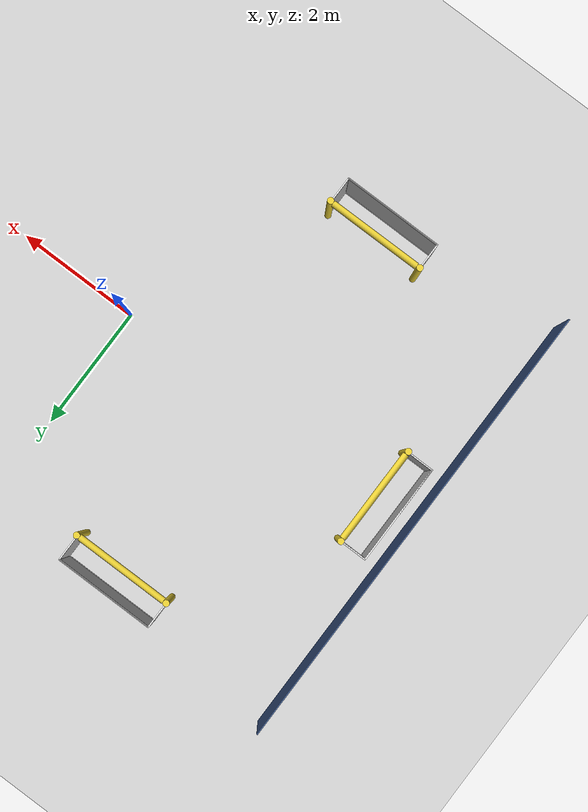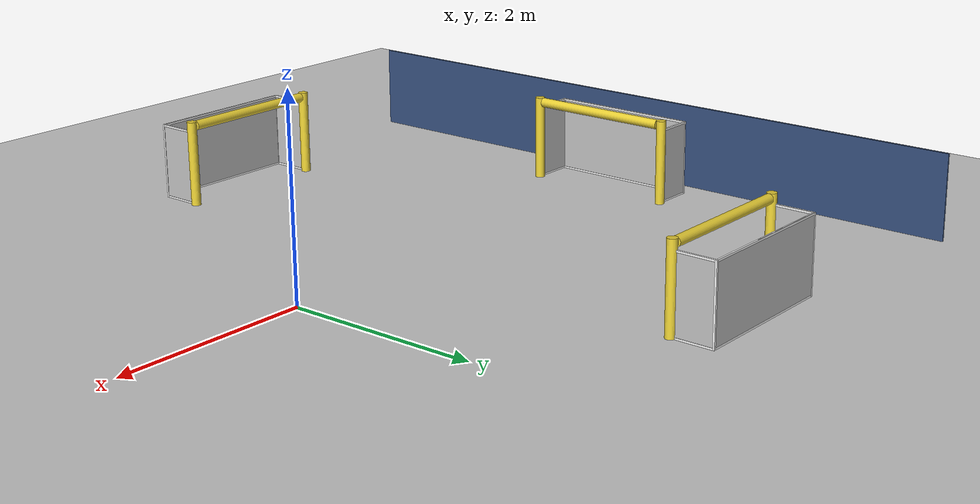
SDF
<sdf version="1.6">
 <world name="default">
  <model name="ground_plane">
   <static>1</static>
   <link name="link">
    <collision name="collision">
     <geometry><plane><normal>0 0 1</normal><size>100 100</size></plane></geometry>
     <surface><friction><ode><mu>100</mu><mu2>50</mu2></ode></friction></surface>
    </collision>
    <visual name="visual">
     <cast_shadows>0</cast_shadows>
     <geometry><plane><normal>0 0 1</normal><size>100 100</size></plane></geometry>
     <material>
      <script><uri>file://media/materials/scripts/gazebo.material</uri><name>Gazebo/Grey</name></script>
     </material>
    </visual>
   </link>
  </model>
  <model name="RoboCup 2014 SPL Goal">
   <static>1</static>
   <link name="left_post">
    <pose>0 0.8 0.45 0 -0 0</pose>
    <collision name="collision">
     <geometry><cylinder><radius>0.05</radius><length>0.9</length></cylinder></geometry>
    </collision>
    <visual name="visual">
     <geometry><cylinder><radius>0.05</radius><length>0.9</length></cylinder></geometry>
     <material>
      <script><uri>file://media/materials/scripts/gazebo.material</uri><name>Gazebo/ZincYellow</name></script>
     </material>
    </visual>
   </link>
   <link name="left_support_horiz_lower">
    <pose>0.24 0.8 0.01 0 -0 0</pose>
    <collision name="collision"><geometry><box><size>0.38 0.02 0.02</size></box></geometry></collision>
    <visual name="visual">
     <geometry><box><size>0.38 0.02 0.02</size></box></geometry>
     <material>
      <script><uri>file://media/materials/scripts/gazebo.material</uri><name>Gazebo/White</name></script>
     </material>
    </visual>
   </link>
   <link name="left_support_horiz_upper">
    <pose>0.24 0.8 0.79 0 -0 0</pose>
    <collision name="collision"><geometry><box><size>0.38 0.02 0.02</size></box></geometry></collision>
    <visual name="visual">
     <geometry><box><size>0.38 0.02 0.02</size></box></geometry>
     <material>
      <script><uri>file://media/materials/scripts/gazebo.material</uri><name>Gazebo/White</name></script>
     </material>
    </visual>
   </link>
   <link name="left_support_vertical">
    <pose>0.44 0.8 0.4 3.14159 1.57079 3.14159</pose>
    <collision name="collision"><geometry><box><size>0.8 0.02 0.02</size></box></geometry></collision>
    <visual name="visual">
     <geometry><box><size>0.8 0.02 0.02</size></box></geometry>
     <material>
      <script><uri>file://media/materials/scripts/gazebo.material</uri><name>Gazebo/White</name></script>
     </material>
    </visual>
   </link>
   <link name="right_support_horiz_lower">
    <pose>0.24 -0.8 0.01 0 -0 0</pose>
    <collision name="collision"><geometry><box><size>0.38 0.02 0.02</size></box></geometry></collision>
    <visual name="visual">
     <geometry><box><size>0.38 0.02 0.02</size></box></geometry>
     <material>
      <script><uri>file://media/materials/scripts/gazebo.material</uri><name>Gazebo/White</name></script>
     </material>
    </visual>
   </link>
   <link name="right_support_horiz_upper">
    <pose>0.24 -0.8 0.79 0 -0 0</pose>
    <collision name="collision"><geometry><box><size>0.38 0.02 0.02</size></box></geometry></collision>
    <visual name="visual">
     <geometry><box><size>0.38 0.02 0.02</size></box></geometry>
     <material>
      <script><uri>file://media/materials/scripts/gazebo.material</uri><name>Gazebo/White</name></script>
     </material>
    </visual>
   </link>
   <link name="right_support_vertical">
    <pose>0.44 -0.8 0.4 3.14159 1.57079 3.14159</pose>
    <collision name="collision"><geometry><box><size>0.8 0.02 0.02</size></box></geometry></collision>
    <visual name="visual">
     <geometry><box><size>0.8 0.02 0.02</size></box></geometry>
     <material>
      <script><uri>file://media/materials/scripts/gazebo.material</uri><name>Gazebo/White</name></script>
     </material>
    </visual>
   </link>
   <link name="center_support_horiz_lower">
    <pose>0.44 0 0.01 3.14159 1.57079 3.14159</pose>
    <collision name="collision"><geometry><box><size>0.02 1.58 0.02</size></box></geometry></collision>
    <visual name="visual">
     <geometry><box><size>0.02 1.58 0.02</size></box></geometry>
     <material>
      <script><uri>file://media/materials/scripts/gazebo.material</uri><name>Gazebo/White</name></script>
     </material>
    </visual>
   </link>
   <link name="center_support_horiz_upper">
    <pose>0.44 0 0.79 3.14159 1.57079 3.14159</pose>
    <collision name="collision"><geometry><box><size>0.02 1.58 0.02</size></box></geometry></collision>
    <visual name="visual">
     <geometry><box><size>0.02 1.58 0.02</size></box></geometry>
     <material>
      <script><uri>file://media/materials/scripts/gazebo.material</uri><name>Gazebo/White</name></script>
     </material>
    </visual>
   </link>
   <link name="right_post">
    <pose>0 -0.8 0.45 0 -0 0</pose>
    <collision name="collision">
     <geometry><cylinder><radius>0.05</radius><length>0.9</length></cylinder></geometry>
    </collision>
    <visual name="visual">
     <geometry><cylinder><radius>0.05</radius><length>0.9</length></cylinder></geometry>
     <material>
      <script><uri>file://media/materials/scripts/gazebo.material</uri><name>Gazebo/ZincYellow</name></script>
     </material>
    </visual>
   </link>
   <link name="crossbar">
    <pose>0 0 0.85 1.57 1.57 0</pose>
    <collision name="collision">
     <geometry><cylinder><radius>0.05</radius><length>1.5</length></cylinder></geometry>
    </collision>
    <visual name="visual">
     <geometry><cylinder><radius>0.05</radius><length>1.5</length></cylinder></geometry>
     <material>
      <script><uri>file://media/materials/scripts/gazebo.material</uri><name>Gazebo/ZincYellow</name></script>
     </material>
    </visual>
   </link>
   <link name="center_net">
    <pose>0.44 0 0.4 0 -0 0</pose>
    <collision name="collision"><geometry><box><size>0.01 1.6 0.8</size></box></geometry></collision>
    <visual name="visual">
     <geometry><box><size>0.01 1.6 0.8</size></box></geometry>
     <material>
      <script>
       <uri>model://robocup09_spl_field/materials/scripts/</uri>
       <uri>model://robocup09_spl_field/materials/textures/</uri>
       <name>RoboCup/Net</name>
      </script>
     </material>
    </visual>
   </link>
   <link name="left_net">
    <pose>0.24 0.8 0.4 0 -0 0</pose>
    <collision name="collision"><geometry><box><size>0.38 0.01 0.76</size></box></geometry></collision>
    <visual name="visual">
     <geometry><box><size>0.38 0.01 0.76</size></box></geometry>
     <material>
      <script>
       <uri>model://robocup09_spl_field/materials/scripts/</uri>
       <uri>model://robocup09_spl_field/materials/textures/</uri>
       <name>RoboCup/Net</name>
      </script>
     </material>
    </visual>
   </link>
   <link name="right_net">
    <pose>0.24 -0.8 0.4 0 -0 0</pose>
    <collision name="collision"><geometry><box><size>0.38 0.01 0.76</size></box></geometry></collision>
    <visual name="visual">
     <geometry><box><size>0.38 0.01 0.76</size></box></geometry>
     <material>
      <script>
       <uri>model://robocup09_spl_field/materials/scripts/</uri>
       <uri>model://robocup09_spl_field/materials/textures/</uri>
       <name>RoboCup/Net</name>
      </script>
     </material>
    </visual>
   </link>
   <pose>-4.5 -0 -0 0 -0 3.14159</pose>
  </model>
  <model name="RoboCup 2014 SPL Goal_0">
   <static>1</static>
   <link name="left_post">
    <pose>0 0.8 0.45 0 -0 0</pose>
    <collision name="collision">
     <geometry><cylinder><radius>0.05</radius><length>0.9</length></cylinder></geometry>
    </collision>
    <visual name="visual">
     <geometry><cylinder><radius>0.05</radius><length>0.9</length></cylinder></geometry>
     <material>
      <script><uri>file://media/materials/scripts/gazebo.material</uri><name>Gazebo/ZincYellow</name></script>
     </material>
    </visual>
   </link>
   <link name="left_support_horiz_lower">
    <pose>0.24 0.8 0.01 0 -0 0</pose>
    <collision name="collision"><geometry><box><size>0.38 0.02 0.02</size></box></geometry></collision>
    <visual name="visual">
     <geometry><box><size>0.38 0.02 0.02</size></box></geometry>
     <material>
      <script><uri>file://media/materials/scripts/gazebo.material</uri><name>Gazebo/White</name></script>
     </material>
    </visual>
   </link>
   <link name="left_support_horiz_upper">
    <pose>0.24 0.8 0.79 0 -0 0</pose>
    <collision name="collision"><geometry><box><size>0.38 0.02 0.02</size></box></geometry></collision>
    <visual name="visual">
     <geometry><box><size>0.38 0.02 0.02</size></box></geometry>
     <material>
      <script><uri>file://media/materials/scripts/gazebo.material</uri><name>Gazebo/White</name></script>
     </material>
    </visual>
   </link>
   <link name="left_support_vertical">
    <pose>0.44 0.8 0.4 3.14159 1.57079 3.14159</pose>
    <collision name="collision"><geometry><box><size>0.8 0.02 0.02</size></box></geometry></collision>
    <visual name="visual">
     <geometry><box><size>0.8 0.02 0.02</size></box></geometry>
     <material>
      <script><uri>file://media/materials/scripts/gazebo.material</uri><name>Gazebo/White</name></script>
     </material>
    </visual>
   </link>
   <link name="right_support_horiz_lower">
    <pose>0.24 -0.8 0.01 0 -0 0</pose>
    <collision name="collision"><geometry><box><size>0.38 0.02 0.02</size></box></geometry></collision>
    <visual name="visual">
     <geometry><box><size>0.38 0.02 0.02</size></box></geometry>
     <material>
      <script><uri>file://media/materials/scripts/gazebo.material</uri><name>Gazebo/White</name></script>
     </material>
    </visual>
   </link>
   <link name="right_support_horiz_upper">
    <pose>0.24 -0.8 0.79 0 -0 0</pose>
    <collision name="collision"><geometry><box><size>0.38 0.02 0.02</size></box></geometry></collision>
    <visual name="visual">
     <geometry><box><size>0.38 0.02 0.02</size></box></geometry>
     <material>
      <script><uri>file://media/materials/scripts/gazebo.material</uri><name>Gazebo/White</name></script>
     </material>
    </visual>
   </link>
   <link name="right_support_vertical">
    <pose>0.44 -0.8 0.4 3.14159 1.57079 3.14159</pose>
    <collision name="collision"><geometry><box><size>0.8 0.02 0.02</size></box></geometry></collision>
    <visual name="visual">
     <geometry><box><size>0.8 0.02 0.02</size></box></geometry>
     <material>
      <script><uri>file://media/materials/scripts/gazebo.material</uri><name>Gazebo/White</name></script>
     </material>
    </visual>
   </link>
   <link name="center_support_horiz_lower">
    <pose>0.44 0 0.01 3.14159 1.57079 3.14159</pose>
    <collision name="collision"><geometry><box><size>0.02 1.58 0.02</size></box></geometry></collision>
    <visual name="visual">
     <geometry><box><size>0.02 1.58 0.02</size></box></geometry>
     <material>
      <script><uri>file://media/materials/scripts/gazebo.material</uri><name>Gazebo/White</name></script>
     </material>
    </visual>
   </link>
   <link name="center_support_horiz_upper">
    <pose>0.44 0 0.79 3.14159 1.57079 3.14159</pose>
    <collision name="collision"><geometry><box><size>0.02 1.58 0.02</size></box></geometry></collision>
    <visual name="visual">
     <geometry><box><size>0.02 1.58 0.02</size></box></geometry>
     <material>
      <script><uri>file://media/materials/scripts/gazebo.material</uri><name>Gazebo/White</name></script>
     </material>
    </visual>
   </link>
   <link name="right_post">
    <pose>0 -0.8 0.45 0 -0 0</pose>
    <collision name="collision">
     <geometry><cylinder><radius>0.05</radius><length>0.9</length></cylinder></geometry>
    </collision>
    <visual name="visual">
     <geometry><cylinder><radius>0.05</radius><length>0.9</length></cylinder></geometry>
     <material>
      <script><uri>file://media/materials/scripts/gazebo.material</uri><name>Gazebo/ZincYellow</name></script>
     </material>
    </visual>
   </link>
   <link name="crossbar">
    <pose>0 0 0.85 1.57 1.57 0</pose>
    <collision name="collision">
     <geometry><cylinder><radius>0.05</radius><length>1.5</length></cylinder></geometry>
    </collision>
    <visual name="visual">
     <geometry><cylinder><radius>0.05</radius><length>1.5</length></cylinder></geometry>
     <material>
      <script><uri>file://media/materials/scripts/gazebo.material</uri><name>Gazebo/ZincYellow</name></script>
     </material>
    </visual>
   </link>
   <link name="center_net">
    <pose>0.44 0 0.4 0 -0 0</pose>
    <collision name="collision"><geometry><box><size>0.01 1.6 0.8</size></box></geometry></collision>
    <visual name="visual">
     <geometry><box><size>0.01 1.6 0.8</size></box></geometry>
     <material>
      <script>
       <uri>model://robocup09_spl_field/materials/scripts/</uri>
       <uri>model://robocup09_spl_field/materials/textures/</uri>
       <name>RoboCup/Net</name>
      </script>
     </material>
    </visual>
   </link>
   <link name="left_net">
    <pose>0.24 0.8 0.4 0 -0 0</pose>
    <collision name="collision"><geometry><box><size>0.38 0.01 0.76</size></box></geometry></collision>
    <visual name="visual">
     <geometry><box><size>0.38 0.01 0.76</size></box></geometry>
     <material>
      <script>
       <uri>model://robocup09_spl_field/materials/scripts/</uri>
       <uri>model://robocup09_spl_field/materials/textures/</uri>
       <name>RoboCup/Net</name>
      </script>
     </material>
    </visual>
   </link>
   <link name="right_net">
    <pose>0.24 -0.8 0.4 0 -0 0</pose>
    <collision name="collision"><geometry><box><size>0.38 0.01 0.76</size></box></geometry></collision>
    <visual name="visual">
     <geometry><box><size>0.38 0.01 0.76</size></box></geometry>
     <material>
      <script>
       <uri>model://robocup09_spl_field/materials/scripts/</uri>
       <uri>model://robocup09_spl_field/materials/textures/</uri>
       <name>RoboCup/Net</name>
      </script>
     </material>
    </visual>
   </link>
   <pose>-2.25 -3 0 0 0 -1.5708</pose>
  </model>
  <model name="RoboCup 2014 SPL Goal_clone">
   <static>1</static>
   <link name="left_post">
    <pose>0 0.8 0.45 0 -0 0</pose>
    <collision name="collision">
     <geometry><cylinder><radius>0.05</radius><length>0.9</length></cylinder></geometry>
    </collision>
    <visual name="visual">
     <geometry><cylinder><radius>0.05</radius><length>0.9</length></cylinder></geometry>
     <material>
      <script><uri>file://media/materials/scripts/gazebo.material</uri><name>Gazebo/ZincYellow</name></script>
     </material>
    </visual>
   </link>
   <link name="left_support_horiz_lower">
    <pose>0.24 0.8 0.01 0 -0 0</pose>
    <collision name="collision"><geometry><box><size>0.38 0.02 0.02</size></box></geometry></collision>
    <visual name="visual">
     <geometry><box><size>0.38 0.02 0.02</size></box></geometry>
     <material>
      <script><uri>file://media/materials/scripts/gazebo.material</uri><name>Gazebo/White</name></script>
     </material>
    </visual>
   </link>
   <link name="left_support_horiz_upper">
    <pose>0.24 0.8 0.79 0 -0 0</pose>
    <collision name="collision"><geometry><box><size>0.38 0.02 0.02</size></box></geometry></collision>
    <visual name="visual">
     <geometry><box><size>0.38 0.02 0.02</size></box></geometry>
     <material>
      <script><uri>file://media/materials/scripts/gazebo.material</uri><name>Gazebo/White</name></script>
     </material>
    </visual>
   </link>
   <link name="left_support_vertical">
    <pose>0.44 0.8 0.4 3.14159 1.57079 3.14159</pose>
    <collision name="collision"><geometry><box><size>0.8 0.02 0.02</size></box></geometry></collision>
    <visual name="visual">
     <geometry><box><size>0.8 0.02 0.02</size></box></geometry>
     <material>
      <script><uri>file://media/materials/scripts/gazebo.material</uri><name>Gazebo/White</name></script>
     </material>
    </visual>
   </link>
   <link name="right_support_horiz_lower">
    <pose>0.24 -0.8 0.01 0 -0 0</pose>
    <collision name="collision"><geometry><box><size>0.38 0.02 0.02</size></box></geometry></collision>
    <visual name="visual">
     <geometry><box><size>0.38 0.02 0.02</size></box></geometry>
     <material>
      <script><uri>file://media/materials/scripts/gazebo.material</uri><name>Gazebo/White</name></script>
     </material>
    </visual>
   </link>
   <link name="right_support_horiz_upper">
    <pose>0.24 -0.8 0.79 0 -0 0</pose>
    <collision name="collision"><geometry><box><size>0.38 0.02 0.02</size></box></geometry></collision>
    <visual name="visual">
     <geometry><box><size>0.38 0.02 0.02</size></box></geometry>
     <material>
      <script><uri>file://media/materials/scripts/gazebo.material</uri><name>Gazebo/White</name></script>
     </material>
    </visual>
   </link>
   <link name="right_support_vertical">
    <pose>0.44 -0.8 0.4 3.14159 1.57079 3.14159</pose>
    <collision name="collision"><geometry><box><size>0.8 0.02 0.02</size></box></geometry></collision>
    <visual name="visual">
     <geometry><box><size>0.8 0.02 0.02</size></box></geometry>
     <material>
      <script><uri>file://media/materials/scripts/gazebo.material</uri><name>Gazebo/White</name></script>
     </material>
    </visual>
   </link>
   <link name="center_support_horiz_lower">
    <pose>0.44 0 0.01 3.14159 1.57079 3.14159</pose>
    <collision name="collision"><geometry><box><size>0.02 1.58 0.02</size></box></geometry></collision>
    <visual name="visual">
     <geometry><box><size>0.02 1.58 0.02</size></box></geometry>
     <material>
      <script><uri>file://media/materials/scripts/gazebo.material</uri><name>Gazebo/White</name></script>
     </material>
    </visual>
   </link>
   <link name="center_support_horiz_upper">
    <pose>0.44 0 0.79 3.14159 1.57079 3.14159</pose>
    <collision name="collision"><geometry><box><size>0.02 1.58 0.02</size></box></geometry></collision>
    <visual name="visual">
     <geometry><box><size>0.02 1.58 0.02</size></box></geometry>
     <material>
      <script><uri>file://media/materials/scripts/gazebo.material</uri><name>Gazebo/White</name></script>
     </material>
    </visual>
   </link>
   <link name="right_post">
    <pose>0 -0.8 0.45 0 -0 0</pose>
    <collision name="collision">
     <geometry><cylinder><radius>0.05</radius><length>0.9</length></cylinder></geometry>
    </collision>
    <visual name="visual">
     <geometry><cylinder><radius>0.05</radius><length>0.9</length></cylinder></geometry>
     <material>
      <script><uri>file://media/materials/scripts/gazebo.material</uri><name>Gazebo/ZincYellow</name></script>
     </material>
    </visual>
   </link>
   <link name="crossbar">
    <pose>0 0 0.85 1.57 1.57 0</pose>
    <collision name="collision">
     <geometry><cylinder><radius>0.05</radius><length>1.5</length></cylinder></geometry>
    </collision>
    <visual name="visual">
     <geometry><cylinder><radius>0.05</radius><length>1.5</length></cylinder></geometry>
     <material>
      <script><uri>file://media/materials/scripts/gazebo.material</uri><name>Gazebo/ZincYellow</name></script>
     </material>
    </visual>
   </link>
   <link name="center_net">
    <pose>0.44 0 0.4 0 -0 0</pose>
    <collision name="collision"><geometry><box><size>0.01 1.6 0.8</size></box></geometry></collision>
    <visual name="visual">
     <geometry><box><size>0.01 1.6 0.8</size></box></geometry>
     <material>
      <script>
       <uri>model://robocup09_spl_field/materials/scripts/</uri>
       <uri>model://robocup09_spl_field/materials/textures/</uri>
       <name>RoboCup/Net</name>
      </script>
     </material>
    </visual>
   </link>
   <link name="left_net">
    <pose>0.24 0.8 0.4 0 -0 0</pose>
    <collision name="collision"><geometry><box><size>0.38 0.01 0.76</size></box></geometry></collision>
    <visual name="visual">
     <geometry><box><size>0.38 0.01 0.76</size></box></geometry>
     <material>
      <script>
       <uri>model://robocup09_spl_field/materials/scripts/</uri>
       <uri>model://robocup09_spl_field/materials/textures/</uri>
       <name>RoboCup/Net</name>
      </script>
     </material>
    </visual>
   </link>
   <link name="right_net">
    <pose>0.24 -0.8 0.4 0 -0 0</pose>
    <collision name="collision"><geometry><box><size>0.38 0.01 0.76</size></box></geometry></collision>
    <visual name="visual">
     <geometry><box><size>0.38 0.01 0.76</size></box></geometry>
     <material>
      <script>
       <uri>model://robocup09_spl_field/materials/scripts/</uri>
       <uri>model://robocup09_spl_field/materials/textures/</uri>
       <name>RoboCup/Net</name>
      </script>
     </material>
    </visual>
   </link>
   <pose>-2.25 3 0 0 -0 1.5708</pose>
  </model>
  <model name="wall01_clone">
   <link name="link">
    <inertial>
     <mass>50</mass>
     <inertia><ixx>1</ixx><ixy>0</ixy><ixz>0</ixz><iyy>1</iyy><iyz>0</iyz><izz>1</izz></inertia>
    </inertial>
    <velocity_decay><linear>0</linear><angular>0</angular></velocity_decay>
    <visual name="wall">
     <pose>0 0 0.45 0 -0 0</pose>
     <geometry><box><size>0.02 7.4 0.9</size></box></geometry>
     <material>
      <ambient>0.392 0.584 0.929 1</ambient>
      <diffuse>0.196 0.292 0.465 1</diffuse>
      <specular>0 0 0 1</specular>
      <shader type="pixel"><normal_map>__default__</normal_map></shader>
      <script><name>ModelPreview_1::link::wall_MATERIAL_</name><uri>__default__</uri></script>
      <emissive>0 0 0 1</emissive>
     </material>
    </visual>
    <collision name="collision_wall">
     <pose>0 0 0.45 0 -0 0</pose>
     <geometry><box><size>0.02 7.4 0.9</size></box></geometry>
     <surface>
      <friction>
       <ode><mu>1</mu><mu2>1</mu2><fdir1>0 0 0</fdir1><slip1>0</slip1><slip2>0</slip2></ode>
       <torsional>
        <coefficient>1</coefficient>
        <patch_radius>0</patch_radius>
        <surface_radius>0</surface_radius>
        <use_patch_radius>1</use_patch_radius>
        <ode><slip>0</slip></ode>
       </torsional>
      </friction>
      <bounce><restitution_coefficient>0</restitution_coefficient><threshold>1e+06</threshold></bounce>
      <contact>
       <collide_without_contact>0</collide_without_contact>
       <collide_without_contact_bitmask>1</collide_without_contact_bitmask>
       <collide_bitmask>1</collide_bitmask>
       <ode>
        <soft_cfm>0</soft_cfm>
        <soft_erp>0.2</soft_erp>
        <kp>1e+13</kp>
        <kd>1</kd>
        <max_vel>0.01</max_vel>
        <min_depth>0</min_depth>
       </ode>
       <bullet>
        <split_impulse>1</split_impulse>
        <split_impulse_penetration_threshold>-0.01</split_impulse_penetration_threshold>
        <soft_cfm>0</soft_cfm>
        <soft_erp>0.2</soft_erp>
        <kp>1e+13</kp>
        <kd>1</kd>
       </bullet>
      </contact>
     </surface>
    </collision>
   </link>
   <static>1</static>
   <pose>-5.2 0 0 0 -0 0</pose>
  </model>
 </world>
</sdf>
